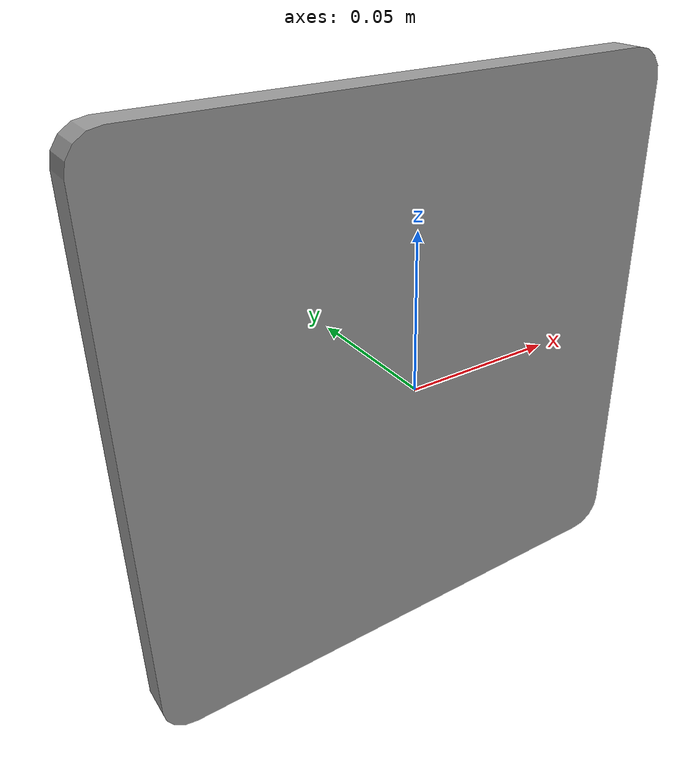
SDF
<?xml version='1.0'?>
<sdf version='1.7'>
  <model name='gj'>
    <static>0</static>
    <allow_auto_disable>1</allow_auto_disable>

    <link name='link_0'>
      <!-- Reasonable mass for a small block (~5cm cube) -->
      <inertial>
        <mass>0.20</mass>
        <!-- Inertia of a 0.05 m cube, m=0.2 kg: I = (1/12)*m*(a^2+a^2) = 8.333e-05 -->
        <inertia>
          <ixx>8.333e-05</ixx>
          <ixy>0</ixy>
          <ixz>0</ixz>
          <iyy>8.333e-05</iyy>
          <iyz>0</iyz>
          <izz>8.333e-05</izz>
        </inertia>
      </inertial>

      <!-- Keep world-frame pose simple; rotate the mesh inside if needed -->
      <pose>0 0 0 0 0 0</pose>
      <gravity>1</gravity>
      <self_collide>0</self_collide>
      <kinematic>0</kinematic>
      <enable_wind>0</enable_wind>

      <!-- Visual: your STL -->
      <visual name='visual'>
        <pose>0 0 0 0 0 0</pose>
        <geometry>
          <mesh>
            <uri>/home/ros/catkin_ws/src/aubo_i10_ros_noetic/aubo_gazebo/world/sygj.stl</uri>
            <scale>1 1 1</scale>
          </mesh>
        </geometry>
        <material>
          <lighting>1</lighting>
          <script>
            <uri>file://media/materials/scripts/gazebo.material</uri>
            <name>Gazebo/Grey</name>
          </script>
          <ambient>0.3 0.3 0.3 1</ambient>
          <diffuse>0.7 0.7 0.7 1</diffuse>
          <specular>0.01 0.01 0.01 1</specular>
          <emissive>0 0 0 1</emissive>
        </material>
        <cast_shadows>1</cast_shadows>
      </visual>

      <!-- Collision: simple primitive (robust) -->
      <collision name='collision'>
        <pose>0 0 0 0 0 0</pose>
        <geometry>
          <!-- Replace with your real size -->
          <box><size>0.05 0.05 0.05</size></box>
        </geometry>

        <surface>
          <friction>
            <ode>
              <mu>1.2</mu>
              <mu2>1.2</mu2>
              <slip1>0.0</slip1>
              <slip2>0.0</slip2>
            </ode>
          </friction>

          <bounce>
            <restitution_coefficient>0.0</restitution_coefficient>
            <threshold>1e6</threshold>
          </bounce>

          <contact>
            <ode>
              <!-- Reasonable contact stiffness/damping to avoid chatter -->
              <kp>3000</kp>
              <kd>15</kd>
              <max_vel>0.2</max_vel>
              <min_depth>0.001</min_depth>
              <soft_cfm>0.0</soft_cfm>
              <soft_erp>0.2</soft_erp>
            </ode>
          </contact>
        </surface>
      </collision>
    </link>
  </model>
</sdf>
